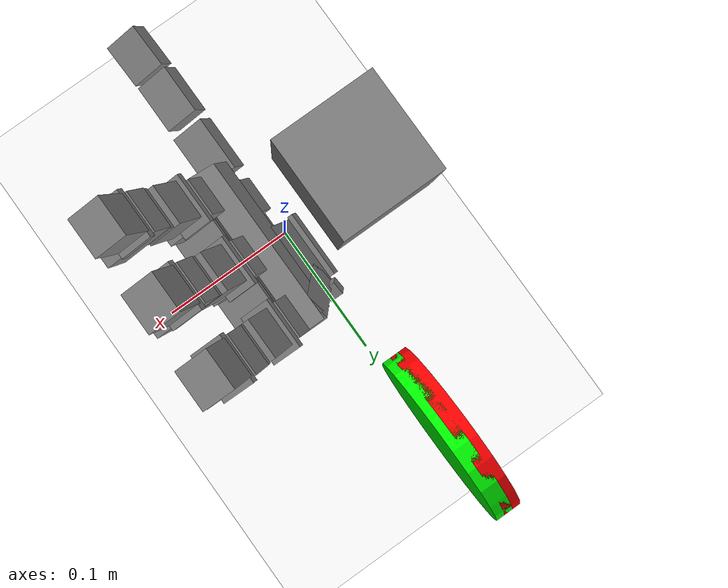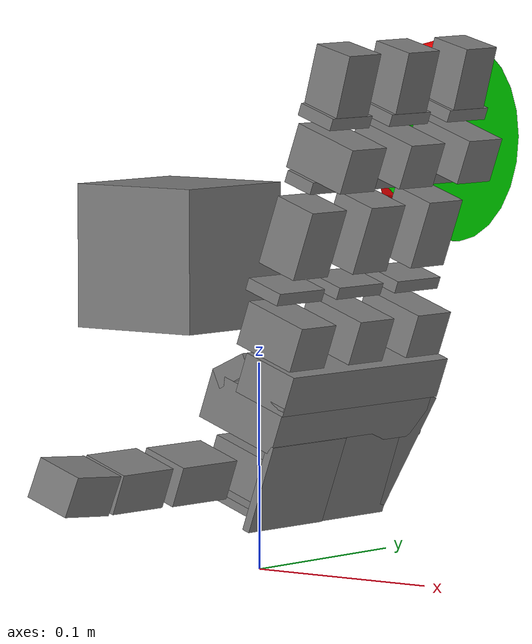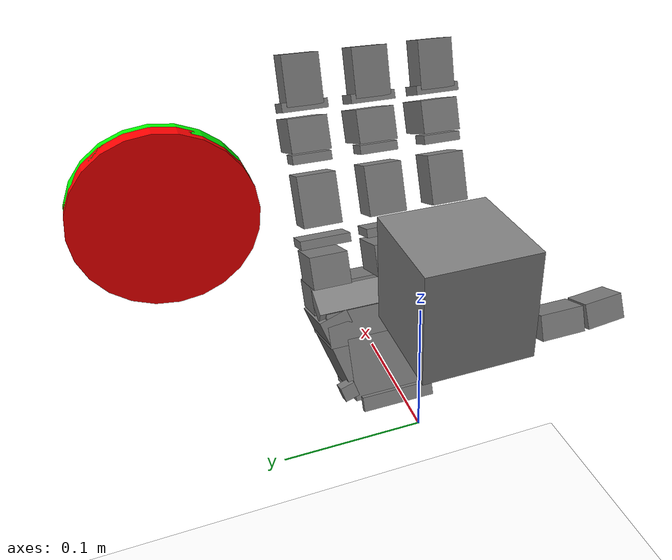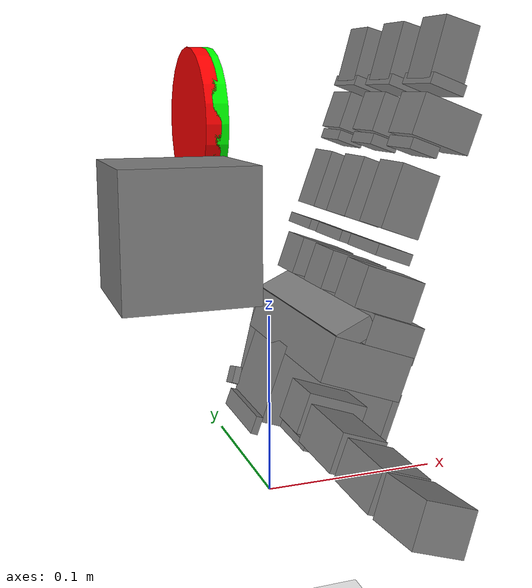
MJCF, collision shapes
<mujoco model="leap_scene">
  <include file="leap_rh_mjx.xml"/>
  <include file="reorientation_cube.xml"/>
  <include file="flag.xml"/>

  <statistic center="0.15 0 0" extent="0.4" meansize="0.01"/>

  <visual>
    <headlight diffuse=".8 .8 .8" ambient=".2 .2 .2" specular="1 1 1"/>
    <rgba force="1 0 0 1"/>
    <global azimuth="120" elevation="-20"/>
    <map force="0.01" stiffness="500"/>
    <scale forcewidth="0.1" contactwidth="0.5" contactheight="0.2"/>
    <quality shadowsize="8192"/>
  </visual>

  <asset>
    <texture type="skybox" builtin="gradient" rgb1="1 1 1" rgb2="1 1 1" width="800" height="800"/>
    <texture type="2d" name="groundplane" builtin="checker" mark="edge" rgb1="1 1 1" rgb2="1 1 1" markrgb="0 0 0"
      width="300" height="300"/>
    <material name="groundplane" texture="groundplane" texuniform="true" texrepeat="5 5" reflectance="0"/>
  </asset>

  <worldbody>
    <camera name="side" pos="-0.8 0.5 0.5" xyaxes="-0.783 -0.622 -0.000 0.332 -0.419 0.845"/>
    <geom name="floor" pos="0 0 -0.25" size="0 0 0.01" type="plane" material="groundplane" contype="2" conaffinity="2"/>

  </worldbody>

  <sensor>
    <!-- cube. -->
    <framepos name="cube_position" objtype="body" objname="cube"/>
    <framequat name="cube_orientation" objtype="body" objname="cube"/>
    <framelinvel name="cube_linvel" objtype="body" objname="cube"/>
    <frameangvel name="cube_angvel" objtype="body" objname="cube"/>
    <frameangacc name="cube_angacc" objtype="body" objname="cube"/>
    <framezaxis name="cube_upvector" objtype="body" objname="cube"/>

    <!-- hand. -->
    <framepos name="palm_position" objtype="site" objname="grasp_site"/>
    <framepos name="th_tip_position" objtype="site" objname="th_tip" reftype="site" refname="grasp_site"/>
    <framepos name="if_tip_position" objtype="site" objname="if_tip" reftype="site" refname="grasp_site"/>
    <framepos name="mf_tip_position" objtype="site" objname="mf_tip" reftype="site" refname="grasp_site"/>
    <framepos name="rf_tip_position" objtype="site" objname="rf_tip" reftype="site" refname="grasp_site"/>

    <touch site="th_tip"/>
    <touch site="if_tip"/>
    <touch site="mf_tip"/>
    <touch site="rf_tip"/>

     <!-- joint torque. -->
    <jointactuatorfrc joint="if_mcp" name="if_mcp_torque_sensor"/>
    <jointactuatorfrc joint="if_rot" name="if_rot_torque_sensor"/>
    <jointactuatorfrc joint="if_pip" name="if_pip_torque_sensor"/>
    <jointactuatorfrc joint="if_dip" name="if_dip_torque_sensor"/>
    <jointactuatorfrc joint="mf_mcp" name="mf_mcp_torque_sensor"/>
    <jointactuatorfrc joint="mf_rot" name="mf_rot_torque_sensor"/>
    <jointactuatorfrc joint="mf_pip" name="mf_pip_torque_sensor"/>
    <jointactuatorfrc joint="mf_dip" name="mf_dip_torque_sensor"/>
    <jointactuatorfrc joint="rf_mcp" name="rf_mcp_torque_sensor"/>
    <jointactuatorfrc joint="rf_rot" name="rf_rot_torque_sensor"/>
    <jointactuatorfrc joint="rf_pip" name="rf_pip_torque_sensor"/>
    <jointactuatorfrc joint="rf_dip" name="rf_dip_torque_sensor"/>
    <jointactuatorfrc joint="th_cmc" name="th_cmc_torque_sensor"/>
    <jointactuatorfrc joint="th_axl" name="th_axl_torque_sensor"/>
    <jointactuatorfrc joint="th_mcp" name="th_mcp_torque_sensor"/>
    <jointactuatorfrc joint="th_ipl" name="th_ipl_torque_sensor"/>

    <!-- joint vel. -->
    <jointvel joint="if_mcp" name="if_mcp_velocity_sensor"/>
    <jointvel joint="if_rot" name="if_rot_velocity_sensor"/>
    <jointvel joint="if_pip" name="if_pip_velocity_sensor"/>
    <jointvel joint="if_dip" name="if_dip_velocity_sensor"/>
    <jointvel joint="mf_mcp" name="mf_mcp_velocity_sensor"/>
    <jointvel joint="mf_rot" name="mf_rot_velocity_sensor"/>
    <jointvel joint="mf_pip" name="mf_pip_velocity_sensor"/>
    <jointvel joint="mf_dip" name="mf_dip_velocity_sensor"/>
    <jointvel joint="rf_mcp" name="rf_mcp_velocity_sensor"/>
    <jointvel joint="rf_rot" name="rf_rot_velocity_sensor"/>
    <jointvel joint="rf_pip" name="rf_pip_velocity_sensor"/>
    <jointvel joint="rf_dip" name="rf_dip_velocity_sensor"/>
    <jointvel joint="th_cmc" name="th_cmc_velocity_sensor"/>
    <jointvel joint="th_axl" name="th_axl_velocity_sensor"/>
    <jointvel joint="th_mcp" name="th_mcp_velocity_sensor"/>
    <jointvel joint="th_ipl" name="th_ipl_velocity_sensor"/>

  </sensor>

  <keyframe>
    <key name="home"
      qpos="
      0 0 0 0
      0 0 0 0
      0 0 0 0
      0 0 0 0
      -0.05 0 0.15 1 0 0 0"
      ctrl="
      0.8 0 0.8 0.8
      0.8 0 0.8 0.8
      0.8 0 0.8 0.8
      0.8 0.8 0.8 0"
      mpos ="0 0.15 0.2"
      mquat="0 0.707 0 0.707"
    />
    <key name="pregrasp"
         qpos='0.33472 0 0.16348 0.28416
               0.33472 0 0.16348 0.28416
               0.33472 0 0.16348 0.28416
              0.45719 0.591555 0.28738 0.5115
              -0.3 0 0.2 1 0 0 0'
    />
    <key name="close_enough"
      mpos ="0 0.15 0.2"
      mquat="0 -0.707 0 0.707"
    />
    <key name= "far"
      mpos ="0 0.15 0.2"
      mquat="0 0.707 0 0.707"
    />

  </keyframe>
</mujoco>

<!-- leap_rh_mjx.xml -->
<mujoco model="leap_rh">
  <compiler angle="radian" autolimits="true"/>

  <option timestep="0.01" integrator="Euler" iterations="5" ls_iterations="8">
    <flag eulerdamp="disable" gravity="disable"/>
  </option>

  <custom>
    <numeric data="30" name="max_contact_points"/>
    <numeric data="12" name="max_geom_pairs"/>
  </custom>

  <asset>
    <material name="black" rgba="0.2 0.2 0.2 1"/>
    <material name="gray" rgba="0.5 0.5 0.5 1"/>
    <mesh name="leap_mount" file="meshes/leap_mount.obj"/>

    <mesh name="palm" file="../../../../../../mujoco_menagerie/leap_grasp/assets/palm_right.obj"/>
    <mesh name="base" file="../../../../../mujoco_menagerie/leap_grasp/assets/base.obj"/>
    <mesh name="proximal" file="../../../../../mujoco_menagerie/leap_grasp/assets/proximal.obj"/>
    <mesh name="medial" file="../../../../../mujoco_menagerie/leap_grasp/assets/medial.obj"/>
    <mesh name="distal" file="../../../../../mujoco_menagerie/leap_grasp/assets/distal.obj"/>
    <mesh name="tip" file="../../../../../mujoco_menagerie/leap_grasp/assets/tip.obj"/>
    <mesh name="thumb_base" file="../../../../../mujoco_menagerie/leap_grasp/assets/thumb_base.obj"/>
    <mesh name="thumb_proximal" file="../../../../../mujoco_menagerie/leap_grasp/assets/thumb_proximal.obj"/>
    <mesh name="thumb_distal" file="../../../../../mujoco_menagerie/leap_grasp/assets/thumb_distal.obj"/>
    <mesh name="thumb_tip" file="../../../../../mujoco_menagerie/leap_grasp/assets/thumb_tip.obj"/>
  </asset>

  <default>
    <default class="leap_rh">
      <geom group="3" friction="0.2" solref="0.02 1.5" solimp="0.9 0.99 0.001"/>
      <default class="visual">
        <geom group="2" type="mesh" contype="0" conaffinity="0" density="0" material="black"/>
      </default>
      <default class="tip">
        <geom size="0.01 0.012 0.016" pos="-0.0012969 -0.0335524 0.0145207" quat="0.703552 0.709596 -0.0292107 -0.0252203" type="box" friction="0.7 0.05 0.0002" rgba=".5 .5 .5 .3"/>
      </default>
      <default class="thumb_tip">
        <geom size="0.01 0.012 0.016" pos="-0.00127744 -0.0455619 -0.0144774" quat="0.708101 0.705072 -0.0294902 -0.024426" type="box" friction="0.7 0.05 0.0002" rgba=".5 .5 .5 .3"/>
      </default>

      <position kp="3.0" inheritrange="1"/>
      <!-- armature = rotor inertia * gear ratio^2 = 1.7 * 1e-8 * 288*288 = 0.00149376 -->
      <!-- max torque = 0.2196 = 600/1000*0.366 -->
      <!-- frictionloss = rough guess, small ish value -->
      <joint axis="0 0 -1" damping="0.2" armature="0.00149376" actuatorfrcrange="-0.2196 0.2196" frictionloss="0.02"/>

      <default class="mcp">
        <joint range="-0.314 2.23"/>
      </default>
      <default class="rot">
        <joint range="-1.047 1.047"/>
      </default>
      <default class="pip">
        <joint range="-0.506 1.885"/>
      </default>
      <default class="dip">
        <joint range="-0.366 2.042"/>
      </default>
      <default class="thumb_cmc">
        <joint range="-0.349 2.094"/>
      </default>
      <default class="thumb_axl">
        <joint range="-0.349 2.094"/>
      </default>
      <default class="thumb_mcp">
        <joint range="-0.47 2.443"/>
      </default>
      <default class="thumb_ipl">
        <joint range="-1.34 1.88"/>
      </default>

    </default>
  </default>

  <contact>
    <!-- filter the palm from all other finger bodies except the tips -->
    <exclude body1="palm" body2="if_bs"/>
    <exclude body1="palm" body2="mf_bs"/>
    <exclude body1="palm" body2="rf_bs"/>
    <exclude body1="palm" body2="th_mp"/>

    <exclude body1="palm" body2="if_px"/>
    <exclude body1="palm" body2="mf_px"/>
    <exclude body1="palm" body2="rf_px"/>
    <exclude body1="palm" body2="th_bs"/>

    <exclude body1="palm" body2="if_md"/>
    <exclude body1="palm" body2="mf_md"/>
    <exclude body1="palm" body2="rf_md"/>
    <exclude body1="palm" body2="th_px"/>

    <!-- filter the mount from all finger bodies except the tips -->
    <exclude body1="leap_mount" body2="if_bs"/>
    <exclude body1="leap_mount" body2="mf_bs"/>
    <exclude body1="leap_mount" body2="rf_bs"/>
    <exclude body1="leap_mount" body2="th_mp"/>

    <exclude body1="leap_mount" body2="if_px"/>
    <exclude body1="leap_mount" body2="mf_px"/>
    <exclude body1="leap_mount" body2="rf_px"/>
    <exclude body1="leap_mount" body2="th_bs"/>

    <exclude body1="leap_mount" body2="if_md"/>
    <exclude body1="leap_mount" body2="mf_md"/>
    <exclude body1="leap_mount" body2="rf_md"/>
    <exclude body1="leap_mount" body2="th_px"/>

    <!-- none of the base fingertip geoms can touch each other -->
    <exclude body1="if_bs" body2="mf_bs"/>
    <exclude body1="if_bs" body2="rf_bs"/>
    <exclude body1="mf_bs" body2="rf_bs"/>

    <exclude body1="th_mp" body2="if_bs"/>
    <exclude body1="th_mp" body2="mf_bs"/>
    <exclude body1="th_mp" body2="rf_bs"/>
  </contact>

  <worldbody>
    <light name="spotlight" mode="targetbodycom" target="palm" pos="3 0 4"/>
    <body name="leap_mount" pos="0 0 0" euler="0 -1.57 0" childclass="leap_rh">
      <geom name="leap_mount_visual" pos="0 0 0" quat="1 0 0 0" class="visual" mesh="leap_mount"/>
      <geom name="leap_mount_collision_0" size="0.002 0.025 0.005" pos="0.0405 0.02 0.009"
        quat="0.57346234 0 0.81923192 0" type="box"/>
      <geom name="leap_mount_collision_1" size="0.005 0.005 0.005" pos="0.05 0.053 0.002"
        quat="0.4987168 0.64994038 -0.34910175 0.45495826" type="box"/>
      <site name="grasp_site" pos="0.11 0.0 0.03" group="4"/>
      <body name="palm" pos="0.124 -0.0305 -0.06045" quat="0 1 0 -0.175">
        <inertial pos="-0.049542 -0.042914 -0.010227" quat="0.565586 0.427629 -0.574956 0.408254" mass="0.237"
          diaginertia="0.000407345 0.000304759 0.000180736"/>
        <geom name="palm_visual" pos="-0.02 0.02575 -0.0347" quat="1 0 0 0" class="visual" mesh="palm"/>
        <geom name="palm_collision_1" size="0.011 0.013 0.017" pos="-0.009 0.008 -0.011" type="box"/>
        <geom name="palm_collision_2" size="0.011 0.013 0.017" pos="-0.009 -0.037 -0.011" type="box"/>
        <geom name="palm_collision_3" size="0.011 0.013 0.017" pos="-0.009 -0.082 -0.011" type="box"/>
        <geom name="palm_collision_4" size="0.029 0.01 0.023" pos="-0.066 -0.078 -0.0115" quat="0.989016 0 0 -0.147806" type="box"/>
        <geom name="palm_collision_5" size="0.01 0.06 0.015" pos="-0.03 -0.035 -0.003" type="box"/>
        <geom name="palm_collision_6" size="0.005 0.06 0.01" pos="-0.032 -0.035 -0.024" quat="0.923956 0 0.382499 0" type="box"/>
        <geom name="palm_collision_7" size="0.012 0.058 0.023" pos="-0.048 -0.033 -0.0115" type="box"/>
        <geom name="palm_collision_8" size="0.022 0.026 0.023" pos="-0.078 -0.053 -0.0115" type="box"/>
        <geom name="palm_collision_9" size="0.002 0.018 0.017" pos="-0.098 -0.009 -0.006" type="box"/>
        <geom name="palm_collision_10" size="0.022 0.028 0.002" pos="-0.078 -0.003 0.01" type="box"/>
        <body name="if_bs" pos="-0.007 0.023 -0.0187" quat="0.5 0.5 0.5 -0.5">
          <inertial pos="-0.022516 0.033882 0.016359" quat="0.388092 0.677951 -0.247713 0.573067" mass="0.044"
            diaginertia="1.74972e-05 1.61504e-05 7.21342e-06"/>
          <joint name="if_mcp" class="mcp"/>
          <geom name="if_bs_visual" pos="0.0084 0.0077 0.01465" quat="1 0 0 0" class="visual" mesh="base"/>
          <geom name="if_bs_collision_1" size="0.01 0.003 0.017" pos="0 0.018 0.0147" type="box"/>
          <body name="if_px" pos="-0.0122 0.0381 0.0145" quat="0.500003 -0.5 -0.499997 0.5">
            <inertial pos="0.0075 -0.0002 -0.011" quat="0 0.707107 0 0.707107" mass="0.032"
              diaginertia="4.8853e-06 4.3733e-06 3.0933e-06"/>
            <joint name="if_rot" class="rot"/>
            <geom name="if_px_visual" pos="0.0096 0.0002 0.0007" quat="0.500003 -0.5 -0.5 -0.499997" class="visual"
              mesh="proximal"/>
            <geom name="if_px_collision" size="0.017 0.013 0.011" pos="0.0075 -0.0002 -0.011" type="box"/>

            <body name="if_md" pos="0.015 0.0143 -0.013" quat="0.500003 0.5 -0.5 0.499997">
              <inertial pos="0.0054215 -0.029148 0.015" quat="0.687228 0.687228 0.166487 0.166487" mass="0.037"
                diaginertia="8.28004e-06 8.1598e-06 5.39516e-06"/>
              <joint name="if_pip" class="pip"/>
              <geom name="if_md_visual" pos="0.0211 -0.0084 0.0097" quat="2.67949e-08 -1 0 0" class="visual"
                mesh="medial"/>
              <geom name="if_md_collision_1" size="0.008 0.003 0.013" pos="0 -0.02 0.015" type="box"/>
              <geom name="if_md_collision_5" size="0.017 0.011 0.013" pos="0.0075 -0.035 0.015" type="box"/>
              <body name="if_ds" pos="0 -0.0361 0.0002">
                <inertial pos="-0.0008794 -0.027019 0.014594" quat="0.702905 0.710643 -0.0212937 -0.0214203"
                  mass="0.016" diaginertia="3.71863e-06 3.02396e-06 1.6518e-06"/>
                <joint name="if_dip" class="dip"/>
                <geom name="if_ds_visual" pos="0.0132 -0.0061 0.0144" quat="2.67949e-08 1 0 0" class="visual"
                  mesh="distal"/>
                <geom name="if_ds_collision_1" size="0.01 0.003 0.015" pos="0 -0.017 0.015" type="box"/>
                <geom name="if_tip" class="tip"/>
                <geom type="mesh" mesh="tip" class="visual" material="gray"/>
                <site name="if_tip" pos="0 -0.05 0.015" group="4"/>
              </body>
            </body>
          </body>
        </body>
        <body name="mf_bs" pos="-0.0071 -0.0224 -0.0187" quat="0.500003 0.5 0.5 -0.499997">
          <inertial pos="-0.022516 0.033882 0.016359" quat="0.388092 0.677951 -0.247713 0.573067" mass="0.044"
            diaginertia="1.74972e-05 1.61504e-05 7.21342e-06"/>
          <joint name="mf_mcp" class="mcp"/>
          <geom name="mf_bs_visual" pos="0.0084 0.0077 0.01465" quat="1 0 0 0" class="visual" mesh="base"/>
          <geom name="mf_bs_collision_1" size="0.01 0.003 0.017" pos="0 0.018 0.0147" type="box"/>
          <body name="mf_px" pos="-0.0122 0.0381 0.0145" quat="0.500003 -0.5 -0.499997 0.5">
            <inertial pos="0.0075 -0.0002 -0.011" quat="0 0.707107 0 0.707107" mass="0.032"
              diaginertia="4.8853e-06 4.3733e-06 3.0933e-06"/>
            <joint name="mf_rot" class="rot"/>
            <geom name="mf_px_visual" pos="0.0096 0.0003 0.0007" quat="0.500003 -0.5 -0.5 -0.499997" class="visual"
              mesh="proximal"/>
            <geom name="mf_px_collision" size="0.017 0.013 0.011" pos="0.0075 -0.0002 -0.011" type="box"/>
            <body name="mf_md" pos="0.015 0.0143 -0.013" quat="0.500003 0.5 -0.5 0.499997">
              <inertial pos="0.0054215 -0.029148 0.015" quat="0.687228 0.687228 0.166487 0.166487" mass="0.037"
                diaginertia="8.28004e-06 8.1598e-06 5.39516e-06"/>
              <joint name="mf_pip" class="pip"/>
              <geom name="mf_md_visual" pos="0.0211 -0.0084 0.0097" quat="1.32679e-06 -1 0 0" class="visual"
                mesh="medial"/>
              <geom name="mf_md_collision_1" size="0.008 0.003 0.013" pos="0 -0.02 0.015" type="box"/>
              <geom name="mf_md_collision_5" size="0.017 0.011 0.013" pos="0.0075 -0.035 0.015" type="box"/>
              <body name="mf_ds" pos="0 -0.0361 0.0002">
                <inertial pos="-0.0008794 -0.027019 0.014594" quat="0.702905 0.710643 -0.0212937 -0.0214203"
                  mass="0.016" diaginertia="3.71863e-06 3.02396e-06 1.6518e-06"/>
                <joint name="mf_dip" class="dip"/>
                <geom name="mf_ds_visual" pos="0.0132 -0.0061 0.0145" quat="1.32679e-06 1 0 0" class="visual"
                  mesh="distal"/>
                <geom name="mf_ds_collision_1" size="0.01 0.003 0.015" pos="0 -0.017 0.015" type="box"/>
                <geom name="mf_tip" class="tip"/>
                <geom type="mesh" mesh="tip" class="visual" material="gray"/>
                <site name="mf_tip" pos="0 -0.05 0.015" group="4"/>
              </body>
            </body>
          </body>
        </body>
        <body name="rf_bs" pos="-0.00709 -0.0678 -0.0187" quat="0.500003 0.5 0.5 -0.499997">
          <inertial pos="-0.022516 0.033882 0.016359" quat="0.388092 0.677951 -0.247713 0.573067" mass="0.044"
            diaginertia="1.74972e-05 1.61504e-05 7.21342e-06"/>
          <joint name="rf_mcp" class="mcp"/>
          <geom name="rf_bs_visual" pos="0.0084 0.0077 0.01465" quat="1 0 0 0" class="visual" mesh="base"/>
          <geom name="rf_bs_collision_1" size="0.01 0.003 0.017" pos="0 0.018 0.0147" type="box"/>
          <body name="rf_px" pos="-0.0122 0.0381 0.0145" quat="0.500003 -0.5 -0.499997 0.5">
            <inertial pos="0.0075 -0.0002 -0.011" quat="0 0.707107 0 0.707107" mass="0.032"
              diaginertia="4.8853e-06 4.3733e-06 3.0933e-06"/>
            <joint name="rf_rot" class="rot"/>
            <geom name="rf_px_visual" pos="0.0096 0.0003 0.0007" quat="0.500003 -0.5 -0.5 -0.499997" class="visual"
              mesh="proximal"/>
            <geom name="rf_px_collision" size="0.017 0.013 0.011" pos="0.0075 -0.0002 -0.011" type="box"/>
            <body name="rf_md" pos="0.015 0.0143 -0.013" quat="0.500003 0.5 -0.5 0.499997">
              <inertial pos="0.0054215 -0.029148 0.015" quat="0.687228 0.687228 0.166487 0.166487" mass="0.037"
                diaginertia="8.28004e-06 8.1598e-06 5.39516e-06"/>
              <joint name="rf_pip" class="pip"/>
              <geom name="rf_md_visual" pos="0.0211 -0.0084 0.0097" quat="0 -1 0 0" class="visual" mesh="medial"/>
              <geom name="rf_md_collision_1" size="0.008 0.003 0.013" pos="0 -0.02 0.015" type="box"/>
              <geom name="rf_md_collision_5" size="0.017 0.011 0.013" pos="0.0075 -0.035 0.015" type="box"/>
              <body name="rf_ds" pos="0 -0.03609 0.0002">
                <inertial pos="-0.0008794 -0.027019 0.014594" quat="0.702905 0.710643 -0.0212937 -0.0214203"
                  mass="0.016" diaginertia="3.71863e-06 3.02396e-06 1.6518e-06"/>
                <joint name="rf_dip" class="dip"/>
                <geom name="rf_ds_visual" pos="0.0132 -0.0061 0.0145" quat="0 1 0 0" class="visual" mesh="distal"/>
                <geom name="rf_ds_collision_1" size="0.01 0.003 0.015" pos="0 -0.017 0.015" type="box"/>
                <geom name="rf_tip" class="tip"/>
                <geom type="mesh" mesh="tip" class="visual" material="gray"/>
                <site name="rf_tip" pos="0 -0.05 0.015" group="4"/>
              </body>
            </body>
          </body>
        </body>
        <body name="th_mp" pos="-0.0693 -0.0012 -0.0216" quat="0.707109 0 0.707105 0">
          <inertial pos="0.0075 -0.0002 -0.011" quat="0 0.707107 0 0.707107" mass="0.032"
            diaginertia="4.8853e-06 4.3733e-06 3.0933e-06"/>
          <joint name="th_cmc" class="thumb_cmc"/>
          <geom name="th_mp_visual" pos="-0.0053 0.0003 0.00078" quat="0.500003 -0.5 -0.5 -0.499997" class="visual"
            mesh="proximal"/>
          <geom name="th_mp_collision" size="0.017 0.013 0.011" pos="-0.0075 -0.0002 -0.011" type="box"/>
          <body name="th_bs" pos="0 0.0143 -0.013" quat="0.500003 0.5 -0.5 0.499997">
            <inertial pos="0 0 -0.0070806" quat="0.707107 0.707107 0 0" mass="0.003"
              diaginertia="6.1932e-07 5.351e-07 2.1516e-07"/>
            <joint name="th_axl" class="thumb_axl"/>
            <geom name="th_bs_collision_1" pos="0.01196 0 -0.0158" quat="0.707109 0.707105 0 0" class="visual" mesh="thumb_base"/>
            <body name="th_px" pos="0 0.0145 -0.017" quat="0.707109 -0.707105 0 0">
              <inertial pos="-0.0020593 0.015912 -0.013733" quat="0.698518 0.697382 -0.104933 0.121324" mass="0.038"
                diaginertia="9.87104e-06 9.32653e-06 4.36203e-06"/>
              <joint name="th_mcp" class="thumb_mcp"/>
              <geom name="th_px_visual" pos="0.0439 0.0579 -0.0086" quat="1 0 0 0" class="visual" mesh="thumb_proximal"/>
              <geom name="th_px_collision_1" size="0.01 0.02 0.012" pos="0 0.0105 -0.014" type="box"/>
              <body name="th_ds" pos="0 0.0466 0.0002" quat="1.32679e-06 0 0 1">
                <inertial pos="0.00096191 -0.024203 -0.014419" quat="0.35287 0.311272 -0.632839 0.614904" mass="0.049"
                  diaginertia="2.08591e-05 2.0402e-05 4.71335e-06"/>
                <joint name="th_ipl" class="thumb_ipl"/>
                <geom name="th_ds_visual" pos="0.0625 0.0784 0.0489" quat="1 0 0 0" class="visual" mesh="thumb_distal"/>
                <geom name="th_ds_collision_1" size="0.01 0.018 0.012" pos="0 -0.0085 -0.015" type="box"/>
                <geom name="th_tip" class="thumb_tip"/>
                <site name="th_tip" pos="0 -0.06 -0.015" group="4"/>
                <site name="th_touch" pos="0 -0.06 -0.015" group="5"/>
                <geom type="mesh" mesh="thumb_tip" class="visual" material="gray"/>
              </body>
            </body>
          </body>
        </body>
      </body>
    </body>
  </worldbody>

  <actuator>
    <position name="if_mcp_act" joint="if_mcp" class="mcp"/>
    <position name="if_rot_act" joint="if_rot" class="rot"/>
    <position name="if_pip_act" joint="if_pip" class="pip"/>
    <position name="if_dip_act" joint="if_dip" class="dip"/>
    <position name="mf_mcp_act" joint="mf_mcp" class="mcp"/>
    <position name="mf_rot_act" joint="mf_rot" class="rot"/>
    <position name="mf_pip_act" joint="mf_pip" class="pip"/>
    <position name="mf_dip_act" joint="mf_dip" class="dip"/>
    <position name="rf_mcp_act" joint="rf_mcp" class="mcp"/>
    <position name="rf_rot_act" joint="rf_rot" class="rot"/>
    <position name="rf_pip_act" joint="rf_pip" class="pip"/>
    <position name="rf_dip_act" joint="rf_dip" class="dip"/>
    <position name="th_cmc_act" joint="th_cmc" class="thumb_cmc"/>
    <position name="th_axl_act" joint="th_axl" class="thumb_axl"/>
    <position name="th_mcp_act" joint="th_mcp" class="thumb_mcp"/>
    <position name="th_ipl_act" joint="th_ipl" class="thumb_ipl"/>
  </actuator>
</mujoco>

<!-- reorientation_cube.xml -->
<mujoco>
  <default>
    <default class="cube">
      <geom friction=".3 0.05" conaffinity="2" condim="3"/>
    </default>
  </default>

  <asset>
    <texture name="cube" type="cube" fileup="reorientation_cube_textures/fileup.png"
      fileback="reorientation_cube_textures/fileback.png" filedown="reorientation_cube_textures/filedown.png"
      filefront="reorientation_cube_textures/filefront.png" fileleft="reorientation_cube_textures/fileleft.png"
      fileright="reorientation_cube_textures/fileright.png"/>
    <material name="cube" texture="cube"/>
    <texture name="graycube" type="cube" fileup="reorientation_cube_textures/grayup.png"
      fileback="reorientation_cube_textures/grayback.png" filedown="reorientation_cube_textures/graydown.png"
      filefront="reorientation_cube_textures/grayfront.png" fileleft="reorientation_cube_textures/grayleft.png"
      fileright="reorientation_cube_textures/grayright.png"/>
    <material name="graycube" texture="graycube"/>
    <texture name="dexcube" type="2d" file="reorientation_cube_textures/dex_cube.png"/>
    <material name="dexcube" texture="dexcube"/>
    <mesh name="cube_mesh" file="meshes/dex_cube.obj" scale="0.035 0.035 0.035"/>
  </asset>

  <worldbody>
    <body name="cube" pos="-0.05 0 0.15" quat="1 0 0 0" childclass="cube">
      <freejoint name="cube_freejoint"/>
      <geom type="mesh" mesh="cube_mesh" material="dexcube" contype="0" conaffinity="0" density="0" group="2"/>
      <geom name="cube" type="box" size=".035 .035 .035" mass=".108" group="3"/>
      <site name="cube_center" pos="0 0 0" group="4"/>
    </body>
  </worldbody>
</mujoco>

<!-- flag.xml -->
<mujoco model="flag">
  <default>
    <default class="flag">
      <geom type="cylinder" size="0.05 0.005" contype="0" conaffinity="0" density="0" group="2" mass=".108"/>
    </default>

  </default>

  <worldbody>
    <!-- Parent body representing the coin -->
    <body name="coin"  mocap="true" pos="0 0.15 0.2" euler="0 1.57 0 ">
      <!-- Red half of the coin -->
      <geom name="red_half" class ="flag" pos="0 0 -0.0025" rgba="1 0 0 1"/>
      <!-- Green half of the coin -->
      <geom name="green_half" class ="flag" pos="0 0 0.0025" rgba="0 1 0 1"/>
    </body>
  </worldbody>
</mujoco>
